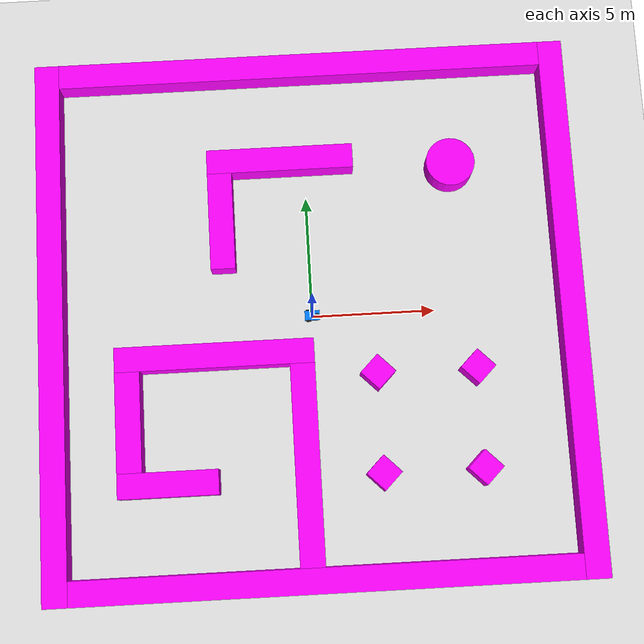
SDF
<?xml version="1.0" encoding="UTF-8"?>
<sdf version="1.8">
    <world name="roomba_world">

        <physics name="1ms" type="ignored">
            <max_step_size>0.001</max_step_size>
            <real_time_factor>1</real_time_factor>
        </physics>
        <plugin filename="libignition-gazebo-physics-system.so" name="ignition::gazebo::systems::Physics" />
        <plugin filename="libignition-gazebo-scene-broadcaster-system.so" name="ignition::gazebo::systems::SceneBroadcaster" />
        <plugin filename="ignition-gazebo-imu-system" name="ignition::gazebo::systems::Imu"/>
        <plugin filename="libignition-gazebo-sensors-system.so" name="ignition::gazebo::systems::Sensors">
            <render_engine>ogre2</render_engine>
        </plugin>

        <dialog name="quick_start" show_again="true" />

        <gui fullscreen="0">
            <!-- Window -->
            <window>
                <position_x>-1</position_x>
                <position_y>-1</position_y>
                <state/>
                <width>960</width>
                <height>1043</height>
                <style material_theme="Dark" material_primary="#ffab91" material_accent="#81d4fa" toolbar_color_light="#f3f3f3" toolbar_text_color_light="#111111" toolbar_color_dark="#414141" toolbar_text_color_dark="#f3f3f3" plugin_toolbar_color_light="" plugin_toolbar_text_color_light="" plugin_toolbar_color_dark="" plugin_toolbar_text_color_dark=""/>
                <menus>
                    <drawer visible="true" default="false"/>
                    <plugins visible="true" from_paths="true"/>
                </menus>
            </window>

            <!-- 3D scene -->
            <plugin filename="MinimalScene" name="3D View">
                <ignition-gui>
                    <title>3D View</title>
                    <property type="bool" key="showTitleBar">false</property>
                    <property type="string" key="state">docked</property>
                </ignition-gui>
                <engine>ogre2</engine>
                <scene>scene</scene>
                <ambient_light>0.4 0.4 0.4</ambient_light>
                <background_color>0.8 0.8 0.8</background_color>
                <camera_pose>-6 0 6 0 0.5 0</camera_pose>
            </plugin>

            <!-- Plugins that add functionality to the scene -->
            <plugin filename="EntityContextMenuPlugin" name="Entity context menu">
                <ignition-gui>
                    <property key="state" type="string">floating</property>
                    <property key="width" type="double">5</property>
                    <property key="height" type="double">5</property>
                    <property key="showTitleBar" type="bool">false</property>
                </ignition-gui>
            </plugin>
            <plugin filename="GzSceneManager" name="Scene Manager">
                <ignition-gui>
                    <property key="resizable" type="bool">false</property>
                    <property key="width" type="double">5</property>
                    <property key="height" type="double">5</property>
                    <property key="state" type="string">floating</property>
                    <property key="showTitleBar" type="bool">false</property>
                </ignition-gui>
            </plugin>
            <plugin filename="InteractiveViewControl" name="Interactive view control">
                <ignition-gui>
                    <property key="resizable" type="bool">false</property>
                    <property key="width" type="double">5</property>
                    <property key="height" type="double">5</property>
                    <property key="state" type="string">floating</property>
                    <property key="showTitleBar" type="bool">false</property>
                </ignition-gui>
            </plugin>
            <plugin filename="CameraTracking" name="Camera Tracking">
                <ignition-gui>
                    <property key="resizable" type="bool">false</property>
                    <property key="width" type="double">5</property>
                    <property key="height" type="double">5</property>
                    <property key="state" type="string">floating</property>
                    <property key="showTitleBar" type="bool">false</property>
                </ignition-gui>
            </plugin>
            <plugin filename="MarkerManager" name="Marker manager">
                <ignition-gui>
                    <property key="resizable" type="bool">false</property>
                    <property key="width" type="double">5</property>
                    <property key="height" type="double">5</property>
                    <property key="state" type="string">floating</property>
                    <property key="showTitleBar" type="bool">false</property>
                </ignition-gui>
            </plugin>
            <plugin filename="SelectEntities" name="Select Entities">
                <ignition-gui>
                    <property key="resizable" type="bool">false</property>
                    <property key="width" type="double">5</property>
                    <property key="height" type="double">5</property>
                    <property key="state" type="string">floating</property>
                    <property key="showTitleBar" type="bool">false</property>
                </ignition-gui>
            </plugin>
            <plugin filename="Spawn" name="Spawn Entities">
                <ignition-gui>
                    <property key="resizable" type="bool">false</property>
                    <property key="width" type="double">5</property>
                    <property key="height" type="double">5</property>
                    <property key="state" type="string">floating</property>
                    <property key="showTitleBar" type="bool">false</property>
                </ignition-gui>
            </plugin>
            <plugin filename="VisualizationCapabilities" name="Visualization Capabilities">
                <ignition-gui>
                    <property key="resizable" type="bool">false</property>
                    <property key="width" type="double">5</property>
                    <property key="height" type="double">5</property>
                    <property key="state" type="string">floating</property>
                    <property key="showTitleBar" type="bool">false</property>
                </ignition-gui>
            </plugin>

            <!-- World control -->
            <plugin filename="WorldControl" name="World control">
                <ignition-gui>
                    <title>World control</title>
                    <property type="bool" key="showTitleBar">false</property>
                    <property type="bool" key="resizable">false</property>
                    <property type="double" key="height">72</property>
                    <property type="double" key="width">121</property>
                    <property type="double" key="z">1</property>
                    <property type="string" key="state">floating</property>
                    <anchors target="3D View">
                        <line own="left" target="left" />
                        <line own="bottom" target="bottom" />
                    </anchors>
                </ignition-gui>
                <play_pause>true</play_pause>
                <step>false</step>
                <start_paused>false</start_paused>
                <use_event>false</use_event>
            </plugin>

            <!-- World statistics -->
            <plugin filename="WorldStats" name="World stats">
                <ignition-gui>
                    <title>World stats</title>
                    <property type="bool" key="showTitleBar">false</property>
                    <property type="bool" key="resizable">false</property>
                    <property type="double" key="height">110</property>
                    <property type="double" key="width">290</property>
                    <property type="double" key="z">1</property>
                    <property type="string" key="state">floating</property>
                    <anchors target="3D View">
                        <line own="right" target="right" />
                        <line own="bottom" target="bottom" />
                    </anchors>
                </ignition-gui>
                <sim_time>true</sim_time>
                <real_time>true</real_time>
                <real_time_factor>true</real_time_factor>
                <iterations>true</iterations>
            </plugin>
        </gui>

        <model name="ground">
            <static>true</static>
            <link name="link">
                <collision name="collision">
                    <geometry>
                        <plane>
                            <normal>0 0 1</normal>
                            <size>20 20</size>
                        </plane>
                    </geometry>
                </collision>
                <visual name="visual">
                    <geometry>
                        <plane>
                            <normal>0 0 1</normal>
                            <size>20 20</size>
                        </plane>
                    </geometry>
                    <material>
                        <ambient>0.9 0.9 0.9 1</ambient>
                        <diffuse>0.9 0.9 0.9 1</diffuse>
                        <specular>0.9 0.9 0.9 1</specular>
                    </material>
                </visual>
            </link>
        </model>

        <model name="wall">
            <static>true</static>
            <pose relative_to="world">0 0 0 0 0 0</pose>
            <link name="wall_right">
                <pose relative_to="__model__">0 -10.5 0.5 0 0 0</pose>
                <visual name="visual">
                    <geometry>
                        <box>
                            <size>20 1 1</size>
                        </box>
                    </geometry>
                    <material>
                        <ambient>1 0 1 1</ambient>
                        <diffuse>1 0 1 1</diffuse>
                        <specular>1 0 1 1</specular>
                    </material>
                </visual>
                <collision name="collision">
                    <geometry>
                        <box>
                            <size>20 1 1</size>
                        </box>
                    </geometry>
                </collision>
            </link>
            <link name="wall_left">
                <pose relative_to="__model__">0 10.5 0.5 0 0 0</pose>
                <visual name="visual">
                    <geometry>
                        <box>
                            <size>20 1 1</size>
                        </box>
                    </geometry>
                    <material>
                        <ambient>1 0 1 1</ambient>
                        <diffuse>1 0 1 1</diffuse>
                        <specular>1 0 1 1</specular>
                    </material>
                </visual>
                <collision name="collision">
                    <geometry>
                        <box>
                            <size>20 1 1</size>
                        </box>
                    </geometry>
                </collision>
            </link>
            <link name="wall_front">
                <pose relative_to="__model__">10.5 0 0.5 0 0 0</pose>
                <visual name="visual">
                    <geometry>
                        <box>
                            <size>1 22 1</size>
                        </box>
                    </geometry>
                    <material>
                        <ambient>1 0 1 1</ambient>
                        <diffuse>1 0 1 1</diffuse>
                        <specular>1 0 1 1</specular>
                    </material>
                </visual>
                <collision name="collision">
                    <geometry>
                        <box>
                            <size>1 22 1</size>
                        </box>
                    </geometry>
                </collision>
            </link>
            <link name="wall_behind">
                <pose relative_to="__model__">-10.5 0 0.5 0 0 0</pose>
                <visual name="visual">
                    <geometry>
                        <box>
                            <size>1 22 1</size>
                        </box>
                    </geometry>
                    <material>
                        <ambient>1 0 1 1</ambient>
                        <diffuse>1 0 1 1</diffuse>
                        <specular>1 0 1 1</specular>
                    </material>
                </visual>
                <collision name="collision">
                    <geometry>
                        <box>
                            <size>1 22 1</size>
                        </box>
                    </geometry>
                </collision>
            </link>
            <link name="object1">
                <pose relative_to="__model__">6 6 0.5 0 0 0</pose>
                <visual name="visual">
                    <geometry>
                        <cylinder>
                            <radius>1</radius>
                            <length>1</length>
                        </cylinder>
                    </geometry>
                    <material>
                        <ambient>1 0 1 1</ambient>
                        <diffuse>1 0 1 1</diffuse>
                        <specular>1 0 1 1</specular>
                    </material>
                </visual>
                <collision name="collision">
                    <geometry>
                        <cylinder>
                            <radius>1</radius>
                            <length>1</length>
                        </cylinder>
                    </geometry>
                </collision>
            </link>
            <link name="object2">
                <pose relative_to="__model__">6.5 -6.5 0.5 0 0 0.785398</pose>
                <visual name="visual">
                    <geometry>
                        <box>
                            <size>1 1 1</size>
                        </box>
                    </geometry>
                    <material>
                        <ambient>1 0 1 1</ambient>
                        <diffuse>1 0 1 1</diffuse>
                        <specular>1 0 1 1</specular>
                    </material>
                </visual>
                <collision name="collision">
                    <geometry>
                        <box>
                            <size>1 1 1</size>
                        </box>
                    </geometry>
                </collision>
            </link>
            <link name="object3">
                <pose relative_to="__model__">2.5 -6.5 0.5 0 0 0.785398</pose>
                <visual name="visual">
                    <geometry>
                        <box>
                            <size>1 1 1</size>
                        </box>
                    </geometry>
                    <material>
                        <ambient>1 0 1 1</ambient>
                        <diffuse>1 0 1 1</diffuse>
                        <specular>1 0 1 1</specular>
                    </material>
                </visual>
                <collision name="collision">
                    <geometry>
                        <box>
                            <size>1 1 1</size>
                        </box>
                    </geometry>
                </collision>
            </link>
            <link name="object4">
                <pose relative_to="__model__">6.5 -2.5 0.5 0 0 0.785398</pose>
                <visual name="visual">
                    <geometry>
                        <box>
                            <size>1 1 1</size>
                        </box>
                    </geometry>
                    <material>
                        <ambient>1 0 1 1</ambient>
                        <diffuse>1 0 1 1</diffuse>
                        <specular>1 0 1 1</specular>
                    </material>
                </visual>
                <collision name="collision">
                    <geometry>
                        <box>
                            <size>1 1 1</size>
                        </box>
                    </geometry>
                </collision>
            </link>
            <link name="object5">
                <pose relative_to="__model__">2.5 -2.5 0.5 0 0 0.785398</pose>
                <visual name="visual">
                    <geometry>
                        <box>
                            <size>1 1 1</size>
                        </box>
                    </geometry>
                    <material>
                        <ambient>1 0 1 1</ambient>
                        <diffuse>1 0 1 1</diffuse>
                        <specular>1 0 1 1</specular>
                    </material>
                </visual>
                <collision name="collision">
                    <geometry>
                        <box>
                            <size>1 1 1</size>
                        </box>
                    </geometry>
                </collision>
            </link>
            <link name="object6">
                <pose relative_to="__model__">-1 6.5 0.5 0 0 0</pose>
                <visual name="visual">
                    <geometry>
                        <box>
                            <size>6 1 1</size>
                        </box>
                    </geometry>
                    <material>
                        <ambient>1 0 1 1</ambient>
                        <diffuse>1 0 1 1</diffuse>
                        <specular>1 0 1 1</specular>
                    </material>
                </visual>
                <collision name="collision">
                    <geometry>
                        <box>
                            <size>6 1 1</size>
                        </box>
                    </geometry>
                </collision>
            </link>
            <link name="object7">
                <pose relative_to="__model__">-3.5 4 0.5 0 0 0</pose>
                <visual name="visual">
                    <geometry>
                        <box>
                            <size>1 4 1</size>
                        </box>
                    </geometry>
                    <material>
                        <ambient>1 0 1 1</ambient>
                        <diffuse>1 0 1 1</diffuse>
                        <specular>1 0 1 1</specular>
                    </material>
                </visual>
                <collision name="collision">
                    <geometry>
                        <box>
                            <size>1 4 1</size>
                        </box>
                    </geometry>
                </collision>
            </link>
            <link name="object8">
                <pose relative_to="__model__">-4 -1.5 0.5 0 0 0</pose>
                <visual name="visual">
                    <geometry>
                        <box>
                            <size>8 1 1</size>
                        </box>
                    </geometry>
                    <material>
                        <ambient>1 0 1 1</ambient>
                        <diffuse>1 0 1 1</diffuse>
                        <specular>1 0 1 1</specular>
                    </material>
                </visual>
                <collision name="collision">
                    <geometry>
                        <box>
                            <size>8 1 1</size>
                        </box>
                    </geometry>
                </collision>
            </link>
            <link name="object9">
                <pose relative_to="__model__">-7.5 -4 0.5 0 0 0</pose>
                <visual name="visual">
                    <geometry>
                        <box>
                            <size>1 4 1</size>
                        </box>
                    </geometry>
                    <material>
                        <ambient>1 0 1 1</ambient>
                        <diffuse>1 0 1 1</diffuse>
                        <specular>1 0 1 1</specular>
                    </material>
                </visual>
                <collision name="collision">
                    <geometry>
                        <box>
                            <size>1 4 1</size>
                        </box>
                    </geometry>
                </collision>
            </link>
            <link name="object10">
                <pose relative_to="__model__">-6 -6.5 0.5 0 0 0</pose>
                <visual name="visual">
                    <geometry>
                        <box>
                            <size>4 1 1</size>
                        </box>
                    </geometry>
                    <material>
                        <ambient>1 0 1 1</ambient>
                        <diffuse>1 0 1 1</diffuse>
                        <specular>1 0 1 1</specular>
                    </material>
                </visual>
                <collision name="collision">
                    <geometry>
                        <box>
                            <size>4 1 1</size>
                        </box>
                    </geometry>
                </collision>
            </link>
            <link name="object11">
                <pose relative_to="__model__">-0.5 -6 0.5 0 0 0</pose>
                <visual name="visual">
                    <geometry>
                        <box>
                            <size>1 8 1</size>
                        </box>
                    </geometry>
                    <material>
                        <ambient>1 0 1 1</ambient>
                        <diffuse>1 0 1 1</diffuse>
                        <specular>1 0 1 1</specular>
                    </material>
                </visual>
                <collision name="collision">
                    <geometry>
                        <box>
                            <size>1 8 1</size>
                        </box>
                    </geometry>
                </collision>
            </link>
        </model>

        <model name="roomba" canonical_link="chassis">
            <pose relative_to="world">0 0 0.3 0 0 0</pose>
            <link name="chassis">
                <pose relative_to="__model__">0 0 0.1 0 0 0</pose>
                <inertial>
                    <mass>30</mass>
                    <inertia>
                        <ixx>0.095329</ixx>
                        <ixy>0</ixy>
                        <ixz>0</ixz>
                        <iyy>0.381317</iyy>
                        <iyz>0</iyz>
                        <izz>0.476646</izz>
                    </inertia>
                </inertial>
                <visual name="visual">
                    <geometry>
                        <box>
                            <size>0.6 0.4 0.1</size>
                        </box>
                    </geometry>
                    <material>
                        <ambient>0 0.5 1 1</ambient>
                        <diffuse>0 0.5 1 1</diffuse>
                        <specular>0 0.5 1 1</specular>
                    </material>
                </visual>
                <collision name="collision">
                    <geometry>
                        <box>
                            <size>0.6 0.4 0.1</size>
                        </box>
                    </geometry>
                </collision>
            </link>

            <link name="lidar">
                <pose relative_to="chassis">0.2 0 0.065 0 0 0</pose>
                <inertial>
                    <mass>1</mass>
                    <inertia>
                        <ixx>0.095329</ixx>
                        <ixy>0</ixy>
                        <ixz>0</ixz>
                        <iyy>0.381317</iyy>
                        <iyz>0</iyz>
                        <izz>0.476646</izz>
                    </inertia>
                </inertial>
                <visual name="visual">
                    <geometry>
                        <cylinder>
                            <radius>0.07</radius>
                            <length>0.04</length>
                        </cylinder>
                    </geometry>
                    <material>
                        <ambient>0.2 0.2 0.2 1</ambient>
                        <diffuse>0.2 0.2 0.2 1</diffuse>
                        <specular>0.2 0.2 0.2 1</specular>
                    </material>
                </visual>
                <collision name="collision">
                    <geometry>
                        <cylinder>
                            <radius>0.07</radius>
                            <length>0.03</length>
                        </cylinder>
                    </geometry>
                </collision>
                <sensor name="gpu_lidar" type="gpu_lidar">
                    <topic>lidar</topic>
                    <update_rate>30</update_rate>
                    <ray>
                        <scan>
                            <horizontal>
                                <samples>270</samples>
                                <resolution>1</resolution>
                                <min_angle>-2.356194</min_angle>
                                <max_angle>2.356194</max_angle>
                            </horizontal>
                            <vertical>
                                <samples>1</samples>
                                <resolution>0.01</resolution>
                                <min_angle>0</min_angle>
                                <max_angle>0</max_angle>
                            </vertical>
                        </scan>
                        <range>
                            <min>0.04</min>
                            <max>4</max>
                            <resolution>0.01</resolution>
                        </range>
                    </ray>
                    <always_on>1</always_on>
                    <visualize>true</visualize>
                </sensor>
                <sensor name="camera" type="camera">
                    <pose>0.05 0 0 0 0 0</pose>
                    <camera>
                        <horizontal_fov>1.047</horizontal_fov>
                        <image>
                            <width>640</width>
                            <height>360</height>
                            <format>R8G8B8</format>
                        </image>
                        <clip>
                            <near>0.1</near>
                            <far>100</far>
                        </clip>
                    </camera>
                    <always_on>1</always_on>
                    <update_rate>30</update_rate>
                    <visualize>true</visualize>
                    <topic>camera</topic>
                </sensor>
            </link>

            <link name="left_wheel">
                <pose relative_to="chassis">-0.15 0.22 0 -1.5707 0 0</pose>
                <inertial>
                    <mass>1</mass>
                    <inertia>
                        <ixx>0.043333</ixx>
                        <ixy>0</ixy>
                        <ixz>0</ixz>
                        <iyy>0.043333</iyy>
                        <iyz>0</iyz>
                        <izz>0.08</izz>
                    </inertia>
                </inertial>
                <visual name="visual">
                    <geometry>
                        <cylinder>
                            <radius>0.1</radius>
                            <length>0.03</length>
                        </cylinder>
                    </geometry>
                    <material>
                        <ambient>0.2 0.2 0.2 1</ambient>
                        <diffuse>0.2 0.2 0.2 1</diffuse>
                        <specular>0.2 0.2 0.2 1</specular>
                    </material>
                </visual>
                <collision name="collision">
                    <geometry>
                        <cylinder>
                            <radius>0.1</radius>
                            <length>0.04</length>
                        </cylinder>
                    </geometry>
                </collision>
            </link>

            <link name="right_wheel">
                <pose relative_to="chassis">-0.15 -0.22 0 -1.5707 0 0</pose>
                <inertial>
                    <mass>1</mass>
                    <inertia>
                        <ixx>0.043333</ixx>
                        <ixy>0</ixy>
                        <ixz>0</ixz>
                        <iyy>0.043333</iyy>
                        <iyz>0</iyz>
                        <izz>0.08</izz>
                    </inertia>
                </inertial>
                <visual name="visual">
                    <geometry>
                        <cylinder>
                            <radius>0.1</radius>
                            <length>0.04</length>
                        </cylinder>
                    </geometry>
                    <material>
                        <ambient>0.2 0.2 0.2 1</ambient>
                        <diffuse>0.2 0.2 0.2 1</diffuse>
                        <specular>0.2 0.2 0.2 1</specular>
                    </material>
                </visual>
                <collision name="collision">
                    <geometry>
                        <cylinder>
                            <radius>0.1</radius>
                            <length>0.04</length>
                        </cylinder>
                    </geometry>
                </collision>
            </link>

            <link name="caster">
                <pose relative_to="chassis">0.2 0 -0.05 0 0 0</pose>
                <inertial>
                    <mass>1</mass>
                    <inertia>
                        <ixx>0.016</ixx>
                        <ixy>0</ixy>
                        <ixz>0</ixz>
                        <iyy>0.016</iyy>
                        <iyz>0</iyz>
                        <izz>0.016</izz>
                    </inertia>
                </inertial>
                <visual name="visual">
                    <geometry>
                        <sphere>
                            <radius>0.05</radius>
                        </sphere>
                    </geometry>
                    <material>
                        <ambient>0 1 0 1</ambient>
                        <diffuse>0 1 0 1</diffuse>
                        <specular>0 1 0 1</specular>
                    </material>
                </visual>
                <collision name="collision">
                    <geometry>
                        <sphere>
                            <radius>0.05</radius>
                        </sphere>
                    </geometry>
                </collision>
            </link>

            <joint name="lidar_joint" type="fixed">
                <parent>chassis</parent>
                <child>lidar</child>
            </joint>

            <joint name="left_wheel_joint" type="revolute">
                <pose relative_to="left_wheel" />
                <parent>chassis</parent>
                <child>left_wheel</child>
                <axis>
                    <xyz expressed_in="__model__">0 1 0</xyz>
                    <limit>
                        <lower>-1.79769e+308</lower>
                        <upper>1.79769e+308</upper>
                    </limit>
                </axis>
            </joint>

            <joint name="right_wheel_joint" type="revolute">
                <pose relative_to="right_wheel" />
                <parent>chassis</parent>
                <child>right_wheel</child>
                <axis>
                    <xyz expressed_in="__model__">0 1 0</xyz>
                    <limit>
                        <lower>-1.79769e+308</lower>
                        <upper>1.79769e+308</upper>
                    </limit>
                </axis>
            </joint>

            <joint name="caster_wheel" type="ball">
                <parent>chassis</parent>
                <child>caster</child>
            </joint>

            <plugin filename="libignition-gazebo-diff-drive-system.so" name="ignition::gazebo::systems::DiffDrive">
                <left_joint>left_wheel_joint</left_joint>
                <right_joint>right_wheel_joint</right_joint>
                <wheel_separation>0.55</wheel_separation>
                <wheel_radius>0.1</wheel_radius>
                <odom_publish_frequency>1</odom_publish_frequency>
                <topic>cmd_vel</topic>
            </plugin>

            <plugin filename="ignition-gazebo-joint-state-publisher-system" name="ignition::gazebo::systems::JointStatePublisher"/>
        </model>
    </world>
</sdf>
